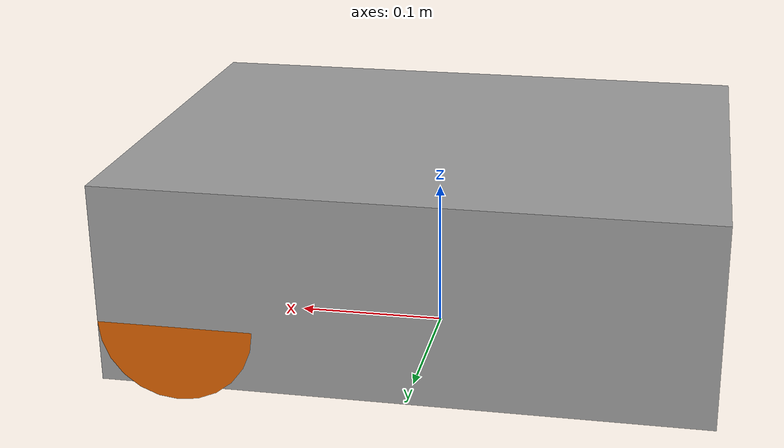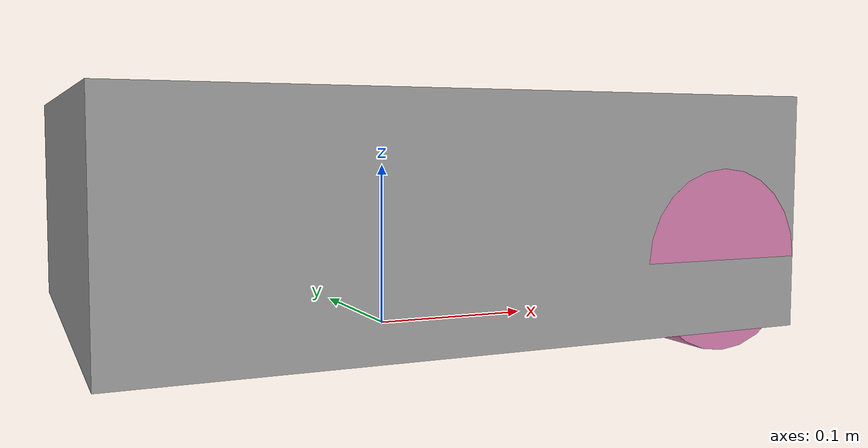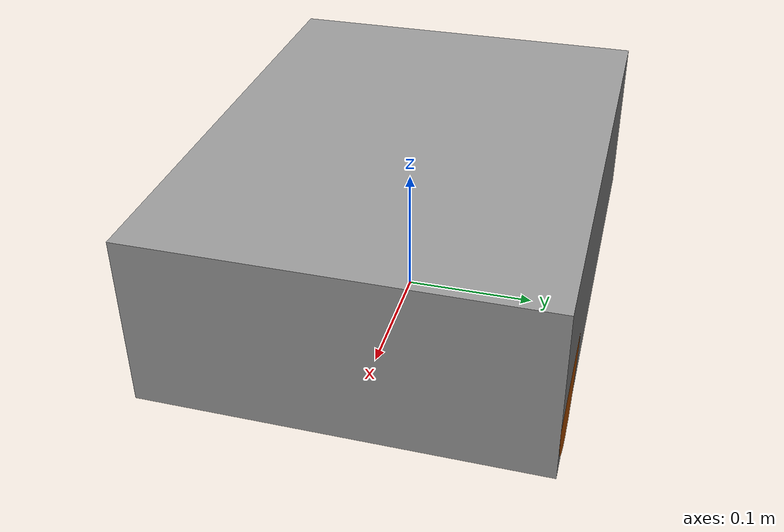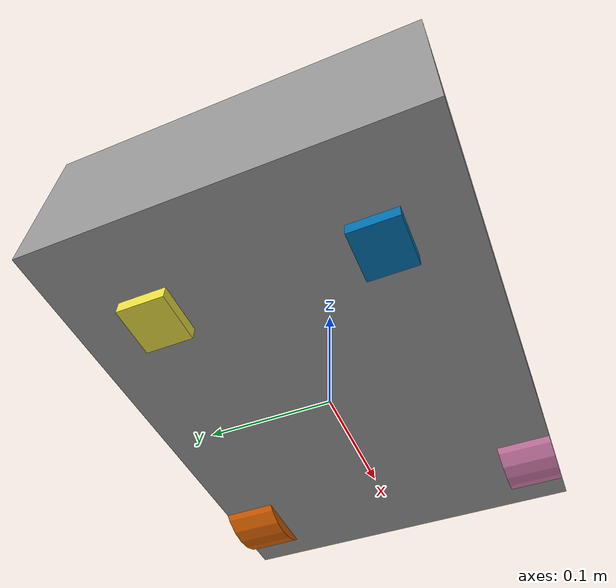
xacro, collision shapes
<?xml version="1.0" encoding="UTF-8"?>
<robot name="orihime-t" xmlns:xacro="http://www.ros.org/wiki/xacro">

    <xacro:property name="M_PI" value="3.14159"/>
    <xacro:property name="laser_min_range" value="0.1"/>
    <xacro:property name="laser_max_range" value="200.0"/>
    <xacro:property name="ros_topic" value="livox/pointcloud"/>
    <xacro:property name="samples" value="24000"/>
    <xacro:property name="downsample" value="1"/>
    <xacro:include filename="$(find orihime_t)/urdf/orihime-t.gazebo.xacro"/>

    <material name="gray">
        <color rgba="0.5 0.5 0.5 1.0"/>
    </material>
    <material name="red">
        <color rgba="1 0 0 1"/>
    </material>

    <xacro:macro name="Livox_Mid_gazebo_sensor" params="visualize:=True update_rate:=10 resolution:=0.002 noise_mean:=0.0 noise_stddev:=0.01 name:=livox_mid360">
        <gazebo reference="lidar_link">
            <sensor type="ray" name="lidar_link">
                <pose>0 0 0 0 0 0</pose>
                <visualize>true</visualize>
                <update_rate>${update_rate}</update_rate>
                <!-- This ray plgin is only for visualization. -->
                <plugin name="gazebo_ros_laser_controller" filename="liblivox_laser_simulation.so">
			        <ray>
			            <scan>
				            <horizontal>
				                <samples>100</samples>
				                <resolution>1</resolution>
				                <min_angle>${0}</min_angle>
				                <max_angle>${2*M_PI}</max_angle>
				            </horizontal>
				            <vertical>
				                <samples>360</samples>
				                <resolution>1</resolution>
				                <min_angle>${-7.22/180*M_PI}</min_angle>
				                <max_angle>${55.22/180*M_PI}</max_angle>
				            </vertical>
			            </scan>

			            <range>
				            <min>${laser_min_range}</min>
				            <max>${laser_max_range}</max>
				            <resolution>${resolution}</resolution>
			            </range>

			            <noise>
				            <type>gaussian</type>
				            <mean>${noise_mean}</mean>
				            <stddev>${noise_stddev}</stddev>
			            </noise>
			        </ray>

		            <samples>${samples}</samples>
		            <downsample>${downsample}</downsample>
		            <csv_file_name>package://livox_laser_simulation/scan_mode/mid360.csv</csv_file_name>
		            <ros_topic>${ros_topic}</ros_topic>
                </plugin>
            </sensor>
        </gazebo>
    </xacro:macro>

    <!-- base_link -->
    <link name="base_link"/>

    <link name="body"/>
    <joint name="camera_init_to_base_link" type="fixed">
        <parent link="body"/>
        <child link="base_link"/>
        <origin xyz="0 0 0" rpy="0 0 0"/>
    </joint>

    <joint name="body_joint" type="fixed">
        <origin xyz="0 0 0.075" rpy="0 0 0"/>
        <parent link="base_link"/>
        <child link="body_link"/>
    </joint>

    <link name="body_link">
        <visual>
            <origin xyz="0.12 0 -0.01" rpy="0 0 1.57"/>
            <geometry>
                <mesh filename="package://orihime_t/meshes/OriHime-T.stl" scale="0.001 0.001 0.001"/>
            </geometry>
        </visual>
        <collision>
            <origin xyz="0 0 0" rpy="0 0 0"/>
            <geometry>
                <box size="0.384 0.292 0.13"/>
            </geometry>
        </collision>
        <inertial>
            <mass value="1.0"/>
            <inertia ixx="0.0" ixy="0.0" ixz="0.0" iyy="0.0" iyz="0.0" izz="0.0"/>
        </inertial>
    </link>

    <joint name="caster_back_left_joint" type="fixed">
        <parent link="body_link"/>
        <child link="caster_back_left_link"/>
        <origin xyz="-0.115 0.083 -0.07" rpy="0 0 0"/>
    </joint>

    <link name="caster_back_left_link">
        <collision>
            <origin xyz="0 0 0" rpy="0 0 0"/>
            <geometry>
                <box size="0.04 0.037 0.01"/>
            </geometry>
        </collision>
        <inertial>
            <origin xyz="0 0 0" />
            <mass value="0.005" />
            <inertia ixx="0.001" ixy="0.0" ixz="0.0"
                     iyy="0.001" iyz="0.0"
                     izz="0.001" />
        </inertial>
    </link>

    <joint name="caster_back_right_joint" type="fixed">
        <parent link="body_link"/>
        <child link="caster_back_right_link"/>
        <origin xyz="-0.115 -0.083 -0.07" rpy="0 0 0"/>
    </joint>

    <link name="caster_back_right_link">
        <collision>
            <origin xyz="0 0 0" rpy="0 0 0"/>
            <geometry>
                <box size="0.04 0.037 0.01"/>
            </geometry>
        </collision>
        <inertial>
            <origin xyz="0 0 0" />
            <mass value="0.005" />
            <inertia ixx="0.001" ixy="0.0" ixz="0.0"
                     iyy="0.001" iyz="0.0"
                     izz="0.001" />
        </inertial>
    </link>

    <joint name="left_wheel_joint" type="continuous">
        <parent link="body_link"/>
        <child link="left_wheel_link"/>
        <origin xyz="0.142 0.1245 -0.025" rpy="-1.57 0 0"/>
        <axis xyz="0 0 1"/>
    </joint>

    <link name="left_wheel_link">
        <visual>
            <origin xyz="0 0 0" rpy="0 0 0"/>
            <geometry>
                <cylinder length="0.043" radius="0.05"/>
            </geometry>
        </visual>
        <collision>
            <origin xyz="0 0 0" rpy="0 0 0"/>
            <geometry>
                <cylinder length="0.043" radius="0.05"/>
            </geometry>
        </collision>
        <inertial>
            <origin xyz="0 0 0"/>
            <mass value="0.02"/>
            <inertia ixx="0.001" ixy="0.0" ixz="0.0"
                     iyy="0.001" iyz="0.0"
                     izz="0.001" />
        </inertial>
    </link>

    <joint name="right_wheel_joint" type="continuous">
        <parent link="body_link"/>
        <child link="right_wheel_link"/>
        <origin xyz="0.142 -0.1245 -0.025" rpy="-1.57 0 0"/>
        <axis xyz="0 0 1"/>
    </joint>

    <link name="right_wheel_link">
        <visual>
            <origin xyz="0 0 0" rpy="0 0 0"/>
            <geometry>
                <cylinder length="0.043" radius="0.05"/>
            </geometry>
        </visual>
        <collision>
            <origin xyz="0 0 0" rpy="0 0 0"/>
            <geometry>
                <cylinder length="0.043" radius="0.05"/>
            </geometry>
        </collision>
        <inertial>
            <origin xyz="0 0 0"/>
            <mass value="0.02"/>
            <inertia ixx="0.001" ixy="0.0" ixz="0.0"
                     iyy="0.001" iyz="0.0"
                     izz="0.001" />
        </inertial>
    </link>

    <joint name="imu_joint" type="fixed">
        <parent link="body_link"/>
        <child link="imu_link"/>
        <origin xyz="0.1 0 0.25" rpy="0 0 0"/>
        <axis xyz="0 0 1" />
      </joint>

    <link name="imu_link"/>

    <joint name="lidar_joint" type="fixed">
        <parent link="body_link"/>
        <child link="lidar_link"/>
        <origin xyz="0.1 0 0.3" rpy="0 0 0"/>
    </joint>

    <link name="lidar_link"/>

    <xacro:Livox_Mid_gazebo_sensor name="livox_mid360"/>

</robot>
